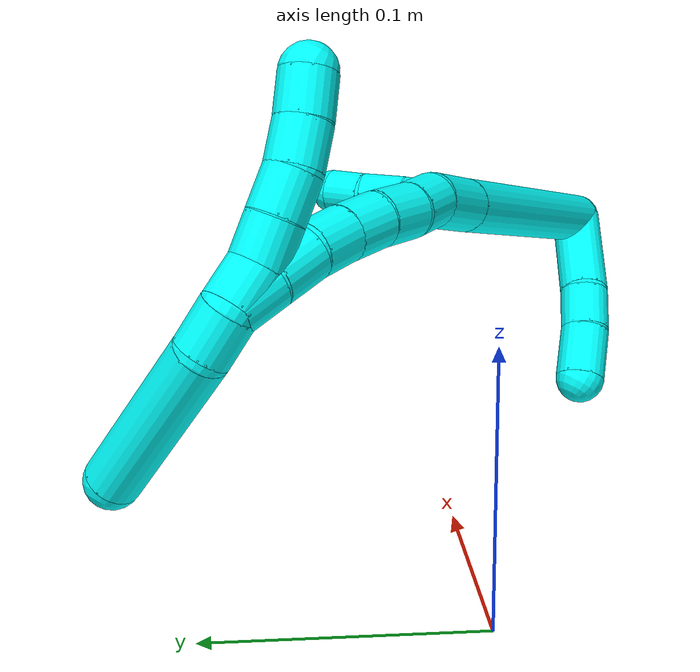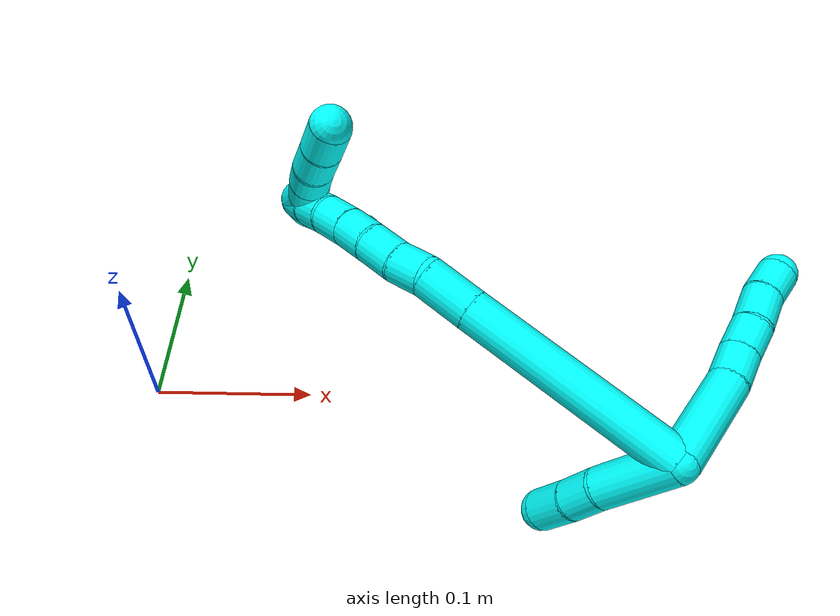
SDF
<sdf version="1.7">
 <world name="default">
  <model name="3">
   <static>0</static>
   <link name="3">
    <collision name="collision-cylinder-e_1_2_8">
     <pose>0.000914 0.03003 -0.008469 -1.84568 0.029271 -0.038666</pose>
     <geometry><cylinder><radius>0.0125</radius><length>0.062429</length></cylinder></geometry>
     <surface>
      <friction><ode><mu>1.16</mu><mu2>1.16</mu2><slip1>0</slip1><slip2>0</slip2></ode></friction>
      <contact><ode><kp>1e+06</kp><kd>1</kd><max_vel>0</max_vel><min_depth>0.001</min_depth></ode></contact>
     </surface>
    </collision>
    <visual name="visual-cylinder-e_1_2_8">
     <pose>0.000914 0.03003 -0.008469 -1.84568 0.029271 -0.038666</pose>
     <geometry><cylinder><radius>0.0125</radius><length>0.062429</length></cylinder></geometry>
     <material><ambient>0.003922 1 0.996078 1</ambient></material>
    </visual>
    <collision name="collision-cylinder-e_2_8_9">
     <pose>0.000393 0.070234 -0.020043 -1.86695 -0.133965 0.180717</pose>
     <geometry><cylinder><radius>0.0125</radius><length>0.021468</length></cylinder></geometry>
     <surface>
      <friction><ode><mu>1.16</mu><mu2>1.16</mu2><slip1>0</slip1><slip2>0</slip2></ode></friction>
      <contact><ode><kp>1e+06</kp><kd>1</kd><max_vel>0</max_vel><min_depth>0.001</min_depth></ode></contact>
     </surface>
    </collision>
    <visual name="visual-cylinder-e_2_8_9">
     <pose>0.000393 0.070234 -0.020043 -1.86695 -0.133965 0.180717</pose>
     <geometry><cylinder><radius>0.0125</radius><length>0.021468</length></cylinder></geometry>
     <material><ambient>0.003922 1 0.996078 1</ambient></material>
    </visual>
    <collision name="collision-cylinder-e_3_9_10">
     <pose>-0.002338 0.090587 -0.025201 -1.76986 -0.124313 0.151799</pose>
     <geometry><cylinder><radius>0.0125</radius><length>0.020928</length></cylinder></geometry>
     <surface>
      <friction><ode><mu>1.16</mu><mu2>1.16</mu2><slip1>0</slip1><slip2>0</slip2></ode></friction>
      <contact><ode><kp>1e+06</kp><kd>1</kd><max_vel>0</max_vel><min_depth>0.001</min_depth></ode></contact>
     </surface>
    </collision>
    <visual name="visual-cylinder-e_3_9_10">
     <pose>-0.002338 0.090587 -0.025201 -1.76986 -0.124313 0.151799</pose>
     <geometry><cylinder><radius>0.0125</radius><length>0.020928</length></cylinder></geometry>
     <material><ambient>0.003922 1 0.996078 1</ambient></material>
    </visual>
    <collision name="collision-cylinder-e_4_10_11">
     <pose>-0.00529 0.112135 -0.031347 -1.91633 -0.136056 0.193275</pose>
     <geometry><cylinder><radius>0.0125</radius><length>0.024395</length></cylinder></geometry>
     <surface>
      <friction><ode><mu>1.16</mu><mu2>1.16</mu2><slip1>0</slip1><slip2>0</slip2></ode></friction>
      <contact><ode><kp>1e+06</kp><kd>1</kd><max_vel>0</max_vel><min_depth>0.001</min_depth></ode></contact>
     </surface>
    </collision>
    <visual name="visual-cylinder-e_4_10_11">
     <pose>-0.00529 0.112135 -0.031347 -1.91633 -0.136056 0.193275</pose>
     <geometry><cylinder><radius>0.0125</radius><length>0.024395</length></cylinder></geometry>
     <material><ambient>0.003922 1 0.996078 1</ambient></material>
    </visual>
    <collision name="collision-cylinder-e_5_11_6">
     <pose>-0.006801 0.133589 -0.037944 -1.81419 0.013792 -0.017636</pose>
     <geometry><cylinder><radius>0.0125</radius><length>0.02078</length></cylinder></geometry>
     <surface>
      <friction><ode><mu>1.16</mu><mu2>1.16</mu2><slip1>0</slip1><slip2>0</slip2></ode></friction>
      <contact><ode><kp>1e+06</kp><kd>1</kd><max_vel>0</max_vel><min_depth>0.001</min_depth></ode></contact>
     </surface>
    </collision>
    <visual name="visual-cylinder-e_5_11_6">
     <pose>-0.006801 0.133589 -0.037944 -1.81419 0.013792 -0.017636</pose>
     <geometry><cylinder><radius>0.0125</radius><length>0.02078</length></cylinder></geometry>
     <material><ambient>0.003922 1 0.996078 1</ambient></material>
    </visual>
    <collision name="collision-cylinder-e_1_2_12">
     <pose>-0.004589 -0.014707 -0.020094 2.50977 -0.182226 -0.545139</pose>
     <geometry><cylinder><radius>0.0125</radius><length>0.050641</length></cylinder></geometry>
     <surface>
      <friction><ode><mu>1.16</mu><mu2>1.16</mu2><slip1>0</slip1><slip2>0</slip2></ode></friction>
      <contact><ode><kp>1e+06</kp><kd>1</kd><max_vel>0</max_vel><min_depth>0.001</min_depth></ode></contact>
     </surface>
    </collision>
    <visual name="visual-cylinder-e_1_2_12">
     <pose>-0.004589 -0.014707 -0.020094 2.50977 -0.182226 -0.545139</pose>
     <geometry><cylinder><radius>0.0125</radius><length>0.050641</length></cylinder></geometry>
     <material><ambient>0.003922 1 0.996078 1</ambient></material>
    </visual>
    <collision name="collision-cylinder-e_2_12_13">
     <pose>-0.009686 -0.034969 -0.049837 2.61926 -0.045636 -0.170364</pose>
     <geometry><cylinder><radius>0.0125</radius><length>0.02229</length></cylinder></geometry>
     <surface>
      <friction><ode><mu>1.16</mu><mu2>1.16</mu2><slip1>0</slip1><slip2>0</slip2></ode></friction>
      <contact><ode><kp>1e+06</kp><kd>1</kd><max_vel>0</max_vel><min_depth>0.001</min_depth></ode></contact>
     </surface>
    </collision>
    <visual name="visual-cylinder-e_2_12_13">
     <pose>-0.009686 -0.034969 -0.049837 2.61926 -0.045636 -0.170364</pose>
     <geometry><cylinder><radius>0.0125</radius><length>0.02229</length></cylinder></geometry>
     <material><ambient>0.003922 1 0.996078 1</ambient></material>
    </visual>
    <collision name="collision-cylinder-e_3_13_5">
     <pose>-0.010663 -0.045852 -0.071918 2.73667 -0.034654 -0.168439</pose>
     <geometry><cylinder><radius>0.0125</radius><length>0.027069</length></cylinder></geometry>
     <surface>
      <friction><ode><mu>1.16</mu><mu2>1.16</mu2><slip1>0</slip1><slip2>0</slip2></ode></friction>
      <contact><ode><kp>1e+06</kp><kd>1</kd><max_vel>0</max_vel><min_depth>0.001</min_depth></ode></contact>
     </surface>
    </collision>
    <visual name="visual-cylinder-e_3_13_5">
     <pose>-0.010663 -0.045852 -0.071918 2.73667 -0.034654 -0.168439</pose>
     <geometry><cylinder><radius>0.0125</radius><length>0.027069</length></cylinder></geometry>
     <material><ambient>0.003922 1 0.996078 1</ambient></material>
    </visual>
    <collision name="collision-cylinder-e_1_2_14">
     <pose>-0.063535 -0.002185 -0.027996 3.06371 -1.15464 -3.0221</pose>
     <geometry><cylinder><radius>0.0125</radius><length>0.138928</length></cylinder></geometry>
     <surface>
      <friction><ode><mu>1.16</mu><mu2>1.16</mu2><slip1>0</slip1><slip2>0</slip2></ode></friction>
      <contact><ode><kp>1e+06</kp><kd>1</kd><max_vel>0</max_vel><min_depth>0.001</min_depth></ode></contact>
     </surface>
    </collision>
    <visual name="visual-cylinder-e_1_2_14">
     <pose>-0.063535 -0.002185 -0.027996 3.06371 -1.15464 -3.0221</pose>
     <geometry><cylinder><radius>0.0125</radius><length>0.138928</length></cylinder></geometry>
     <material><ambient>0.003922 1 0.996078 1</ambient></material>
    </visual>
    <collision name="collision-cylinder-e_2_14_15">
     <pose>-0.142015 -0.004769 -0.062318 3.07854 -1.16963 -3.04639</pose>
     <geometry><cylinder><radius>0.0125</radius><length>0.032467</length></cylinder></geometry>
     <surface>
      <friction><ode><mu>1.16</mu><mu2>1.16</mu2><slip1>0</slip1><slip2>0</slip2></ode></friction>
      <contact><ode><kp>1e+06</kp><kd>1</kd><max_vel>0</max_vel><min_depth>0.001</min_depth></ode></contact>
     </surface>
    </collision>
    <visual name="visual-cylinder-e_2_14_15">
     <pose>-0.142015 -0.004769 -0.062318 3.07854 -1.16963 -3.04639</pose>
     <geometry><cylinder><radius>0.0125</radius><length>0.032467</length></cylinder></geometry>
     <material><ambient>0.003922 1 0.996078 1</ambient></material>
    </visual>
    <collision name="collision-cylinder-e_3_15_16">
     <pose>-0.165023 -0.006221 -0.075142 2.98097 -0.886114 -2.80557</pose>
     <geometry><cylinder><radius>0.0125</radius><length>0.020818</length></cylinder></geometry>
     <surface>
      <friction><ode><mu>1.16</mu><mu2>1.16</mu2><slip1>0</slip1><slip2>0</slip2></ode></friction>
      <contact><ode><kp>1e+06</kp><kd>1</kd><max_vel>0</max_vel><min_depth>0.001</min_depth></ode></contact>
     </surface>
    </collision>
    <visual name="visual-cylinder-e_3_15_16">
     <pose>-0.165023 -0.006221 -0.075142 2.98097 -0.886114 -2.80557</pose>
     <geometry><cylinder><radius>0.0125</radius><length>0.020818</length></cylinder></geometry>
     <material><ambient>0.003922 1 0.996078 1</ambient></material>
    </visual>
    <collision name="collision-cylinder-e_4_16_17">
     <pose>-0.18199 -0.006767 -0.088692 -3.06975 -0.899728 2.99302</pose>
     <geometry><cylinder><radius>0.0125</radius><length>0.022741</length></cylinder></geometry>
     <surface>
      <friction><ode><mu>1.16</mu><mu2>1.16</mu2><slip1>0</slip1><slip2>0</slip2></ode></friction>
      <contact><ode><kp>1e+06</kp><kd>1</kd><max_vel>0</max_vel><min_depth>0.001</min_depth></ode></contact>
     </surface>
    </collision>
    <visual name="visual-cylinder-e_4_16_17">
     <pose>-0.18199 -0.006767 -0.088692 -3.06975 -0.899728 2.99302</pose>
     <geometry><cylinder><radius>0.0125</radius><length>0.022741</length></cylinder></geometry>
     <material><ambient>0.003922 1 0.996078 1</ambient></material>
    </visual>
    <collision name="collision-cylinder-e_5_17_18">
     <pose>-0.198283 -0.005521 -0.103247 -3.04352 -0.775229 2.90232</pose>
     <geometry><cylinder><radius>0.0125</radius><length>0.02111</length></cylinder></geometry>
     <surface>
      <friction><ode><mu>1.16</mu><mu2>1.16</mu2><slip1>0</slip1><slip2>0</slip2></ode></friction>
      <contact><ode><kp>1e+06</kp><kd>1</kd><max_vel>0</max_vel><min_depth>0.001</min_depth></ode></contact>
     </surface>
    </collision>
    <visual name="visual-cylinder-e_5_17_18">
     <pose>-0.198283 -0.005521 -0.103247 -3.04352 -0.775229 2.90232</pose>
     <geometry><cylinder><radius>0.0125</radius><length>0.02111</length></cylinder></geometry>
     <material><ambient>0.003922 1 0.996078 1</ambient></material>
    </visual>
    <collision name="collision-cylinder-e_6_18_19">
     <pose>-0.212762 -0.004515 -0.11857 -3.10733 -0.736374 3.05283</pose>
     <geometry><cylinder><radius>0.0125</radius><length>0.021121</length></cylinder></geometry>
     <surface>
      <friction><ode><mu>1.16</mu><mu2>1.16</mu2><slip1>0</slip1><slip2>0</slip2></ode></friction>
      <contact><ode><kp>1e+06</kp><kd>1</kd><max_vel>0</max_vel><min_depth>0.001</min_depth></ode></contact>
     </surface>
    </collision>
    <visual name="visual-cylinder-e_6_18_19">
     <pose>-0.212762 -0.004515 -0.11857 -3.10733 -0.736374 3.05283</pose>
     <geometry><cylinder><radius>0.0125</radius><length>0.021121</length></cylinder></geometry>
     <material><ambient>0.003922 1 0.996078 1</ambient></material>
    </visual>
    <collision name="collision-cylinder-e_7_19_20">
     <pose>-0.225389 -0.003463 -0.135793 -3.05845 -0.530456 2.83769</pose>
     <geometry><cylinder><radius>0.0125</radius><length>0.021878</length></cylinder></geometry>
     <surface>
      <friction><ode><mu>1.16</mu><mu2>1.16</mu2><slip1>0</slip1><slip2>0</slip2></ode></friction>
      <contact><ode><kp>1e+06</kp><kd>1</kd><max_vel>0</max_vel><min_depth>0.001</min_depth></ode></contact>
     </surface>
    </collision>
    <visual name="visual-cylinder-e_7_19_20">
     <pose>-0.225389 -0.003463 -0.135793 -3.05845 -0.530456 2.83769</pose>
     <geometry><cylinder><radius>0.0125</radius><length>0.021878</length></cylinder></geometry>
     <material><ambient>0.003922 1 0.996078 1</ambient></material>
    </visual>
    <collision name="collision-cylinder-e_8_20_1">
     <pose>-0.235272 -0.00109 -0.154585 -2.97388 -0.428395 2.40414</pose>
     <geometry><cylinder><radius>0.0125</radius><length>0.020937</length></cylinder></geometry>
     <surface>
      <friction><ode><mu>1.16</mu><mu2>1.16</mu2><slip1>0</slip1><slip2>0</slip2></ode></friction>
      <contact><ode><kp>1e+06</kp><kd>1</kd><max_vel>0</max_vel><min_depth>0.001</min_depth></ode></contact>
     </surface>
    </collision>
    <visual name="visual-cylinder-e_8_20_1">
     <pose>-0.235272 -0.00109 -0.154585 -2.97388 -0.428395 2.40414</pose>
     <geometry><cylinder><radius>0.0125</radius><length>0.020937</length></cylinder></geometry>
     <material><ambient>0.003922 1 0.996078 1</ambient></material>
    </visual>
    <collision name="collision-cylinder-e_1_1_21">
     <pose>-0.236569 0.002923 -0.173805 -2.89993 0.292735 -1.76362</pose>
     <geometry><cylinder><radius>0.0125</radius><length>0.021151</length></cylinder></geometry>
     <surface>
      <friction><ode><mu>1.16</mu><mu2>1.16</mu2><slip1>0</slip1><slip2>0</slip2></ode></friction>
      <contact><ode><kp>1e+06</kp><kd>1</kd><max_vel>0</max_vel><min_depth>0.001</min_depth></ode></contact>
     </surface>
    </collision>
    <visual name="visual-cylinder-e_1_1_21">
     <pose>-0.236569 0.002923 -0.173805 -2.89993 0.292735 -1.76362</pose>
     <geometry><cylinder><radius>0.0125</radius><length>0.021151</length></cylinder></geometry>
     <material><ambient>0.003922 1 0.996078 1</ambient></material>
    </visual>
    <collision name="collision-cylinder-e_2_21_4">
     <pose>-0.213922 0.021974 -0.213533 -2.63402 0.520179 -1.59643</pose>
     <geometry><cylinder><radius>0.0125</radius><length>0.078849</length></cylinder></geometry>
     <surface>
      <friction><ode><mu>1.16</mu><mu2>1.16</mu2><slip1>0</slip1><slip2>0</slip2></ode></friction>
      <contact><ode><kp>1e+06</kp><kd>1</kd><max_vel>0</max_vel><min_depth>0.001</min_depth></ode></contact>
     </surface>
    </collision>
    <visual name="visual-cylinder-e_2_21_4">
     <pose>-0.213922 0.021974 -0.213533 -2.63402 0.520179 -1.59643</pose>
     <geometry><cylinder><radius>0.0125</radius><length>0.078849</length></cylinder></geometry>
     <material><ambient>0.003922 1 0.996078 1</ambient></material>
    </visual>
    <collision name="collision-cylinder-e_1_1_22">
     <pose>-0.238712 0.000662 -0.154017 -0.016303 0.091033 -0.000743</pose>
     <geometry><cylinder><radius>0.0125</radius><length>0.02</length></cylinder></geometry>
     <surface>
      <friction><ode><mu>1.16</mu><mu2>1.16</mu2><slip1>0</slip1><slip2>0</slip2></ode></friction>
      <contact><ode><kp>1e+06</kp><kd>1</kd><max_vel>0</max_vel><min_depth>0.001</min_depth></ode></contact>
     </surface>
    </collision>
    <visual name="visual-cylinder-e_1_1_22">
     <pose>-0.238712 0.000662 -0.154017 -0.016303 0.091033 -0.000743</pose>
     <geometry><cylinder><radius>0.0125</radius><length>0.02</length></cylinder></geometry>
     <material><ambient>0.003922 1 0.996078 1</ambient></material>
    </visual>
    <collision name="collision-cylinder-e_2_22_23">
     <pose>-0.240007 0.001399 -0.134322 -0.058962 -0.222248 0.006581</pose>
     <geometry><cylinder><radius>0.0125</radius><length>0.02</length></cylinder></geometry>
     <surface>
      <friction><ode><mu>1.16</mu><mu2>1.16</mu2><slip1>0</slip1><slip2>0</slip2></ode></friction>
      <contact><ode><kp>1e+06</kp><kd>1</kd><max_vel>0</max_vel><min_depth>0.001</min_depth></ode></contact>
     </surface>
    </collision>
    <visual name="visual-cylinder-e_2_22_23">
     <pose>-0.240007 0.001399 -0.134322 -0.058962 -0.222248 0.006581</pose>
     <geometry><cylinder><radius>0.0125</radius><length>0.02</length></cylinder></geometry>
     <material><ambient>0.003922 1 0.996078 1</ambient></material>
    </visual>
    <collision name="collision-cylinder-e_3_23_24">
     <pose>-0.243884 0.002899 -0.11477 -0.093897 -0.168036 0.007913</pose>
     <geometry><cylinder><radius>0.0125</radius><length>0.02</length></cylinder></geometry>
     <surface>
      <friction><ode><mu>1.16</mu><mu2>1.16</mu2><slip1>0</slip1><slip2>0</slip2></ode></friction>
      <contact><ode><kp>1e+06</kp><kd>1</kd><max_vel>0</max_vel><min_depth>0.001</min_depth></ode></contact>
     </surface>
    </collision>
    <visual name="visual-cylinder-e_3_23_24">
     <pose>-0.243884 0.002899 -0.11477 -0.093897 -0.168036 0.007913</pose>
     <geometry><cylinder><radius>0.0125</radius><length>0.02</length></cylinder></geometry>
     <material><ambient>0.003922 1 0.996078 1</ambient></material>
    </visual>
    <collision name="collision-cylinder-e_4_24_25">
     <pose>-0.247291 0.006557 -0.095492 -0.281302 -0.174298 0.02474</pose>
     <geometry><cylinder><radius>0.0125</radius><length>0.02</length></cylinder></geometry>
     <surface>
      <friction><ode><mu>1.16</mu><mu2>1.16</mu2><slip1>0</slip1><slip2>0</slip2></ode></friction>
      <contact><ode><kp>1e+06</kp><kd>1</kd><max_vel>0</max_vel><min_depth>0.001</min_depth></ode></contact>
     </surface>
    </collision>
    <visual name="visual-cylinder-e_4_24_25">
     <pose>-0.247291 0.006557 -0.095492 -0.281302 -0.174298 0.02474</pose>
     <geometry><cylinder><radius>0.0125</radius><length>0.02</length></cylinder></geometry>
     <material><ambient>0.003922 1 0.996078 1</ambient></material>
    </visual>
    <collision name="collision-cylinder-e_5_25_3">
     <pose>-0.251196 0.012762 -0.076908 -0.363524 -0.218915 0.040391</pose>
     <geometry><cylinder><radius>0.0125</radius><length>0.02</length></cylinder></geometry>
     <surface>
      <friction><ode><mu>1.16</mu><mu2>1.16</mu2><slip1>0</slip1><slip2>0</slip2></ode></friction>
      <contact><ode><kp>1e+06</kp><kd>1</kd><max_vel>0</max_vel><min_depth>0.001</min_depth></ode></contact>
     </surface>
    </collision>
    <visual name="visual-cylinder-e_5_25_3">
     <pose>-0.251196 0.012762 -0.076908 -0.363524 -0.218915 0.040391</pose>
     <geometry><cylinder><radius>0.0125</radius><length>0.02</length></cylinder></geometry>
     <material><ambient>0.003922 1 0.996078 1</ambient></material>
    </visual>
    <collision name="collision-sphere-3">
     <pose>-0.253368 0.016233 -0.067784 0 -0 0</pose>
     <geometry><sphere><radius>0.0125</radius></sphere></geometry>
     <surface>
      <friction><ode><mu>1.16</mu><mu2>1.16</mu2><slip1>0</slip1><slip2>0</slip2></ode></friction>
      <contact><ode><kp>1e+06</kp><kd>1</kd><max_vel>0</max_vel><min_depth>0.001</min_depth></ode></contact>
     </surface>
    </collision>
    <visual name="visual-sphere-3">
     <pose>-0.253368 0.016233 -0.067784 0 -0 0</pose>
     <geometry><sphere><radius>0.0125</radius></sphere></geometry>
     <material><ambient>0.003922 1 0.996078 1</ambient></material>
    </visual>
    <collision name="collision-sphere-25">
     <pose>-0.249025 0.009291 -0.086031 0 -0 0</pose>
     <geometry><sphere><radius>0.0125</radius></sphere></geometry>
     <surface>
      <friction><ode><mu>1.16</mu><mu2>1.16</mu2><slip1>0</slip1><slip2>0</slip2></ode></friction>
      <contact><ode><kp>1e+06</kp><kd>1</kd><max_vel>0</max_vel><min_depth>0.001</min_depth></ode></contact>
     </surface>
    </collision>
    <visual name="visual-sphere-25">
     <pose>-0.249025 0.009291 -0.086031 0 -0 0</pose>
     <geometry><sphere><radius>0.0125</radius></sphere></geometry>
     <material><ambient>0.003922 1 0.996078 1</ambient></material>
    </visual>
    <collision name="collision-sphere-24">
     <pose>-0.245556 0.003823 -0.104954 0 -0 0</pose>
     <geometry><sphere><radius>0.0125</radius></sphere></geometry>
     <surface>
      <friction><ode><mu>1.16</mu><mu2>1.16</mu2><slip1>0</slip1><slip2>0</slip2></ode></friction>
      <contact><ode><kp>1e+06</kp><kd>1</kd><max_vel>0</max_vel><min_depth>0.001</min_depth></ode></contact>
     </surface>
    </collision>
    <visual name="visual-sphere-24">
     <pose>-0.245556 0.003823 -0.104954 0 -0 0</pose>
     <geometry><sphere><radius>0.0125</radius></sphere></geometry>
     <material><ambient>0.003922 1 0.996078 1</ambient></material>
    </visual>
    <collision name="collision-sphere-23">
     <pose>-0.242211 0.001974 -0.124585 0 -0 0</pose>
     <geometry><sphere><radius>0.0125</radius></sphere></geometry>
     <surface>
      <friction><ode><mu>1.16</mu><mu2>1.16</mu2><slip1>0</slip1><slip2>0</slip2></ode></friction>
      <contact><ode><kp>1e+06</kp><kd>1</kd><max_vel>0</max_vel><min_depth>0.001</min_depth></ode></contact>
     </surface>
    </collision>
    <visual name="visual-sphere-23">
     <pose>-0.242211 0.001974 -0.124585 0 -0 0</pose>
     <geometry><sphere><radius>0.0125</radius></sphere></geometry>
     <material><ambient>0.003922 1 0.996078 1</ambient></material>
    </visual>
    <collision name="collision-sphere-22">
     <pose>-0.237803 0.000825 -0.144059 0 -0 0</pose>
     <geometry><sphere><radius>0.0125</radius></sphere></geometry>
     <surface>
      <friction><ode><mu>1.16</mu><mu2>1.16</mu2><slip1>0</slip1><slip2>0</slip2></ode></friction>
      <contact><ode><kp>1e+06</kp><kd>1</kd><max_vel>0</max_vel><min_depth>0.001</min_depth></ode></contact>
     </surface>
    </collision>
    <visual name="visual-sphere-22">
     <pose>-0.237803 0.000825 -0.144059 0 -0 0</pose>
     <geometry><sphere><radius>0.0125</radius></sphere></geometry>
     <material><ambient>0.003922 1 0.996078 1</ambient></material>
    </visual>
    <collision name="collision-sphere-4">
     <pose>-0.194327 0.038603 -0.24343 0 -0 0</pose>
     <geometry><sphere><radius>0.0125</radius></sphere></geometry>
     <surface>
      <friction><ode><mu>1.16</mu><mu2>1.16</mu2><slip1>0</slip1><slip2>0</slip2></ode></friction>
      <contact><ode><kp>1e+06</kp><kd>1</kd><max_vel>0</max_vel><min_depth>0.001</min_depth></ode></contact>
     </surface>
    </collision>
    <visual name="visual-sphere-4">
     <pose>-0.194327 0.038603 -0.24343 0 -0 0</pose>
     <geometry><sphere><radius>0.0125</radius></sphere></geometry>
     <material><ambient>0.003922 1 0.996078 1</ambient></material>
    </visual>
    <collision name="collision-sphere-21">
     <pose>-0.233518 0.005346 -0.183637 0 -0 0</pose>
     <geometry><sphere><radius>0.0125</radius></sphere></geometry>
     <surface>
      <friction><ode><mu>1.16</mu><mu2>1.16</mu2><slip1>0</slip1><slip2>0</slip2></ode></friction>
      <contact><ode><kp>1e+06</kp><kd>1</kd><max_vel>0</max_vel><min_depth>0.001</min_depth></ode></contact>
     </surface>
    </collision>
    <visual name="visual-sphere-21">
     <pose>-0.233518 0.005346 -0.183637 0 -0 0</pose>
     <geometry><sphere><radius>0.0125</radius></sphere></geometry>
     <material><ambient>0.003922 1 0.996078 1</ambient></material>
    </visual>
    <collision name="collision-sphere-1">
     <pose>-0.239621 0.0005 -0.163974 0 -0 0</pose>
     <geometry><sphere><radius>0.0125</radius></sphere></geometry>
     <surface>
      <friction><ode><mu>1.16</mu><mu2>1.16</mu2><slip1>0</slip1><slip2>0</slip2></ode></friction>
      <contact><ode><kp>1e+06</kp><kd>1</kd><max_vel>0</max_vel><min_depth>0.001</min_depth></ode></contact>
     </surface>
    </collision>
    <visual name="visual-sphere-1">
     <pose>-0.239621 0.0005 -0.163974 0 -0 0</pose>
     <geometry><sphere><radius>0.0125</radius></sphere></geometry>
     <material><ambient>0.003922 1 0.996078 1</ambient></material>
    </visual>
    <collision name="collision-sphere-6">
     <pose>-0.006657 0.143672 -0.040448 0 -0 0</pose>
     <geometry><sphere><radius>0.0125</radius></sphere></geometry>
     <surface>
      <friction><ode><mu>1.16</mu><mu2>1.16</mu2><slip1>0</slip1><slip2>0</slip2></ode></friction>
      <contact><ode><kp>1e+06</kp><kd>1</kd><max_vel>0</max_vel><min_depth>0.001</min_depth></ode></contact>
     </surface>
    </collision>
    <visual name="visual-sphere-6">
     <pose>-0.006657 0.143672 -0.040448 0 -0 0</pose>
     <geometry><sphere><radius>0.0125</radius></sphere></geometry>
     <material><ambient>0.003922 1 0.996078 1</ambient></material>
    </visual>
    <collision name="collision-sphere-11">
     <pose>-0.006944 0.123506 -0.03544 0 -0 0</pose>
     <geometry><sphere><radius>0.0125</radius></sphere></geometry>
     <surface>
      <friction><ode><mu>1.16</mu><mu2>1.16</mu2><slip1>0</slip1><slip2>0</slip2></ode></friction>
      <contact><ode><kp>1e+06</kp><kd>1</kd><max_vel>0</max_vel><min_depth>0.001</min_depth></ode></contact>
     </surface>
    </collision>
    <visual name="visual-sphere-11">
     <pose>-0.006944 0.123506 -0.03544 0 -0 0</pose>
     <geometry><sphere><radius>0.0125</radius></sphere></geometry>
     <material><ambient>0.003922 1 0.996078 1</ambient></material>
    </visual>
    <collision name="collision-sphere-10">
     <pose>-0.003635 0.100765 -0.027254 0 -0 0</pose>
     <geometry><sphere><radius>0.0125</radius></sphere></geometry>
     <surface>
      <friction><ode><mu>1.16</mu><mu2>1.16</mu2><slip1>0</slip1><slip2>0</slip2></ode></friction>
      <contact><ode><kp>1e+06</kp><kd>1</kd><max_vel>0</max_vel><min_depth>0.001</min_depth></ode></contact>
     </surface>
    </collision>
    <visual name="visual-sphere-10">
     <pose>-0.003635 0.100765 -0.027254 0 -0 0</pose>
     <geometry><sphere><radius>0.0125</radius></sphere></geometry>
     <material><ambient>0.003922 1 0.996078 1</ambient></material>
    </visual>
    <collision name="collision-sphere-9">
     <pose>-0.00104 0.080409 -0.023147 0 -0 0</pose>
     <geometry><sphere><radius>0.0125</radius></sphere></geometry>
     <surface>
      <friction><ode><mu>1.16</mu><mu2>1.16</mu2><slip1>0</slip1><slip2>0</slip2></ode></friction>
      <contact><ode><kp>1e+06</kp><kd>1</kd><max_vel>0</max_vel><min_depth>0.001</min_depth></ode></contact>
     </surface>
    </collision>
    <visual name="visual-sphere-9">
     <pose>-0.00104 0.080409 -0.023147 0 -0 0</pose>
     <geometry><sphere><radius>0.0125</radius></sphere></geometry>
     <material><ambient>0.003922 1 0.996078 1</ambient></material>
    </visual>
    <collision name="collision-sphere-2">
     <geometry><sphere><radius>0.0125</radius></sphere></geometry>
     <surface>
      <friction><ode><mu>1.16</mu><mu2>1.16</mu2><slip1>0</slip1><slip2>0</slip2></ode></friction>
      <contact><ode><kp>1e+06</kp><kd>1</kd><max_vel>0</max_vel><min_depth>0.001</min_depth></ode></contact>
     </surface>
    </collision>
    <visual name="visual-sphere-2">
     <geometry><sphere><radius>0.0125</radius></sphere></geometry>
     <material><ambient>0.003922 1 0.996078 1</ambient></material>
    </visual>
    <collision name="collision-sphere-19">
     <pose>-0.219855 -0.004246 -0.12639 0 -0 0</pose>
     <geometry><sphere><radius>0.0125</radius></sphere></geometry>
     <surface>
      <friction><ode><mu>1.16</mu><mu2>1.16</mu2><slip1>0</slip1><slip2>0</slip2></ode></friction>
      <contact><ode><kp>1e+06</kp><kd>1</kd><max_vel>0</max_vel><min_depth>0.001</min_depth></ode></contact>
     </surface>
    </collision>
    <visual name="visual-sphere-19">
     <pose>-0.219855 -0.004246 -0.12639 0 -0 0</pose>
     <geometry><sphere><radius>0.0125</radius></sphere></geometry>
     <material><ambient>0.003922 1 0.996078 1</ambient></material>
    </visual>
    <collision name="collision-sphere-8">
     <pose>0.001827 0.060059 -0.016938 0 -0 0</pose>
     <geometry><sphere><radius>0.0125</radius></sphere></geometry>
     <surface>
      <friction><ode><mu>1.16</mu><mu2>1.16</mu2><slip1>0</slip1><slip2>0</slip2></ode></friction>
      <contact><ode><kp>1e+06</kp><kd>1</kd><max_vel>0</max_vel><min_depth>0.001</min_depth></ode></contact>
     </surface>
    </collision>
    <visual name="visual-sphere-8">
     <pose>0.001827 0.060059 -0.016938 0 -0 0</pose>
     <geometry><sphere><radius>0.0125</radius></sphere></geometry>
     <material><ambient>0.003922 1 0.996078 1</ambient></material>
    </visual>
    <collision name="collision-sphere-12">
     <pose>-0.009177 -0.029414 -0.040188 0 -0 0</pose>
     <geometry><sphere><radius>0.0125</radius></sphere></geometry>
     <surface>
      <friction><ode><mu>1.16</mu><mu2>1.16</mu2><slip1>0</slip1><slip2>0</slip2></ode></friction>
      <contact><ode><kp>1e+06</kp><kd>1</kd><max_vel>0</max_vel><min_depth>0.001</min_depth></ode></contact>
     </surface>
    </collision>
    <visual name="visual-sphere-12">
     <pose>-0.009177 -0.029414 -0.040188 0 -0 0</pose>
     <geometry><sphere><radius>0.0125</radius></sphere></geometry>
     <material><ambient>0.003922 1 0.996078 1</ambient></material>
    </visual>
    <collision name="collision-sphere-13">
     <pose>-0.010194 -0.040523 -0.059486 0 -0 0</pose>
     <geometry><sphere><radius>0.0125</radius></sphere></geometry>
     <surface>
      <friction><ode><mu>1.16</mu><mu2>1.16</mu2><slip1>0</slip1><slip2>0</slip2></ode></friction>
      <contact><ode><kp>1e+06</kp><kd>1</kd><max_vel>0</max_vel><min_depth>0.001</min_depth></ode></contact>
     </surface>
    </collision>
    <visual name="visual-sphere-13">
     <pose>-0.010194 -0.040523 -0.059486 0 -0 0</pose>
     <geometry><sphere><radius>0.0125</radius></sphere></geometry>
     <material><ambient>0.003922 1 0.996078 1</ambient></material>
    </visual>
    <collision name="collision-sphere-5">
     <pose>-0.011132 -0.051181 -0.084351 0 -0 0</pose>
     <geometry><sphere><radius>0.0125</radius></sphere></geometry>
     <surface>
      <friction><ode><mu>1.16</mu><mu2>1.16</mu2><slip1>0</slip1><slip2>0</slip2></ode></friction>
      <contact><ode><kp>1e+06</kp><kd>1</kd><max_vel>0</max_vel><min_depth>0.001</min_depth></ode></contact>
     </surface>
    </collision>
    <visual name="visual-sphere-5">
     <pose>-0.011132 -0.051181 -0.084351 0 -0 0</pose>
     <geometry><sphere><radius>0.0125</radius></sphere></geometry>
     <material><ambient>0.003922 1 0.996078 1</ambient></material>
    </visual>
    <collision name="collision-sphere-14">
     <pose>-0.12707 -0.00437 -0.055991 0 -0 0</pose>
     <geometry><sphere><radius>0.0125</radius></sphere></geometry>
     <surface>
      <friction><ode><mu>1.16</mu><mu2>1.16</mu2><slip1>0</slip1><slip2>0</slip2></ode></friction>
      <contact><ode><kp>1e+06</kp><kd>1</kd><max_vel>0</max_vel><min_depth>0.001</min_depth></ode></contact>
     </surface>
    </collision>
    <visual name="visual-sphere-14">
     <pose>-0.12707 -0.00437 -0.055991 0 -0 0</pose>
     <geometry><sphere><radius>0.0125</radius></sphere></geometry>
     <material><ambient>0.003922 1 0.996078 1</ambient></material>
    </visual>
    <collision name="collision-sphere-15">
     <pose>-0.15696 -0.005168 -0.068644 0 -0 0</pose>
     <geometry><sphere><radius>0.0125</radius></sphere></geometry>
     <surface>
      <friction><ode><mu>1.16</mu><mu2>1.16</mu2><slip1>0</slip1><slip2>0</slip2></ode></friction>
      <contact><ode><kp>1e+06</kp><kd>1</kd><max_vel>0</max_vel><min_depth>0.001</min_depth></ode></contact>
     </surface>
    </collision>
    <visual name="visual-sphere-15">
     <pose>-0.15696 -0.005168 -0.068644 0 -0 0</pose>
     <geometry><sphere><radius>0.0125</radius></sphere></geometry>
     <material><ambient>0.003922 1 0.996078 1</ambient></material>
    </visual>
    <collision name="collision-sphere-16">
     <pose>-0.173086 -0.007274 -0.08164 0 -0 0</pose>
     <geometry><sphere><radius>0.0125</radius></sphere></geometry>
     <surface>
      <friction><ode><mu>1.16</mu><mu2>1.16</mu2><slip1>0</slip1><slip2>0</slip2></ode></friction>
      <contact><ode><kp>1e+06</kp><kd>1</kd><max_vel>0</max_vel><min_depth>0.001</min_depth></ode></contact>
     </surface>
    </collision>
    <visual name="visual-sphere-16">
     <pose>-0.173086 -0.007274 -0.08164 0 -0 0</pose>
     <geometry><sphere><radius>0.0125</radius></sphere></geometry>
     <material><ambient>0.003922 1 0.996078 1</ambient></material>
    </visual>
    <collision name="collision-sphere-17">
     <pose>-0.190895 -0.006259 -0.095744 0 -0 0</pose>
     <geometry><sphere><radius>0.0125</radius></sphere></geometry>
     <surface>
      <friction><ode><mu>1.16</mu><mu2>1.16</mu2><slip1>0</slip1><slip2>0</slip2></ode></friction>
      <contact><ode><kp>1e+06</kp><kd>1</kd><max_vel>0</max_vel><min_depth>0.001</min_depth></ode></contact>
     </surface>
    </collision>
    <visual name="visual-sphere-17">
     <pose>-0.190895 -0.006259 -0.095744 0 -0 0</pose>
     <geometry><sphere><radius>0.0125</radius></sphere></geometry>
     <material><ambient>0.003922 1 0.996078 1</ambient></material>
    </visual>
    <collision name="collision-sphere-18">
     <pose>-0.20567 -0.004783 -0.11075 0 -0 0</pose>
     <geometry><sphere><radius>0.0125</radius></sphere></geometry>
     <surface>
      <friction><ode><mu>1.16</mu><mu2>1.16</mu2><slip1>0</slip1><slip2>0</slip2></ode></friction>
      <contact><ode><kp>1e+06</kp><kd>1</kd><max_vel>0</max_vel><min_depth>0.001</min_depth></ode></contact>
     </surface>
    </collision>
    <visual name="visual-sphere-18">
     <pose>-0.20567 -0.004783 -0.11075 0 -0 0</pose>
     <geometry><sphere><radius>0.0125</radius></sphere></geometry>
     <material><ambient>0.003922 1 0.996078 1</ambient></material>
    </visual>
    <collision name="collision-sphere-20">
     <pose>-0.230924 -0.002679 -0.145196 0 -0 0</pose>
     <geometry><sphere><radius>0.0125</radius></sphere></geometry>
     <surface>
      <friction><ode><mu>1.16</mu><mu2>1.16</mu2><slip1>0</slip1><slip2>0</slip2></ode></friction>
      <contact><ode><kp>1e+06</kp><kd>1</kd><max_vel>0</max_vel><min_depth>0.001</min_depth></ode></contact>
     </surface>
    </collision>
    <visual name="visual-sphere-20">
     <pose>-0.230924 -0.002679 -0.145196 0 -0 0</pose>
     <geometry><sphere><radius>0.0125</radius></sphere></geometry>
     <material><ambient>0.003922 1 0.996078 1</ambient></material>
    </visual>
    <inertial>
     <pose>-0.115776 0.012336 -0.079364 0 -0 0</pose>
     <mass>0.75</mass>
     <inertia>
      <ixx>-0.000124</ixx>
      <ixy>0</ixy>
      <ixz>0</ixz>
      <iyy>0.000196</iyy>
      <iyz>0</iyz>
      <izz>0.000147</izz>
     </inertia>
    </inertial>
   </link>
   <pose>0.316236 -0.097925 0.083529 0.287358 0.606587 -0.534505</pose>
  </model>
 </world>
</sdf>
